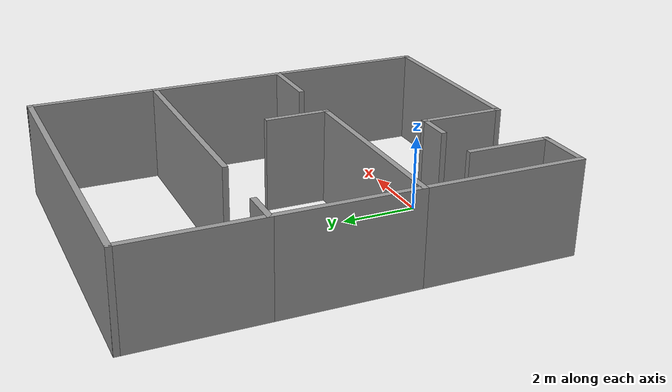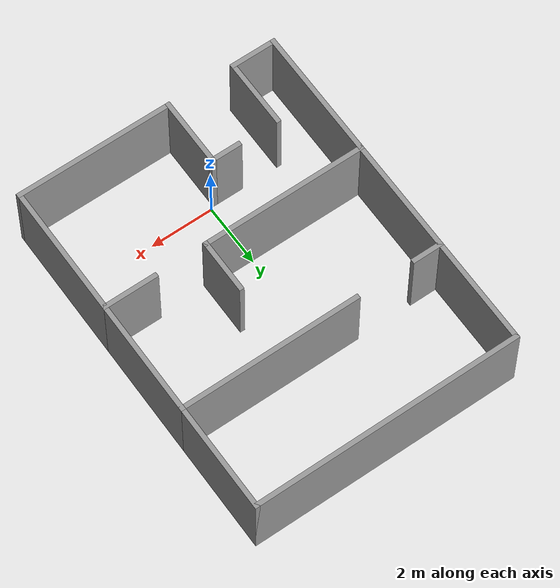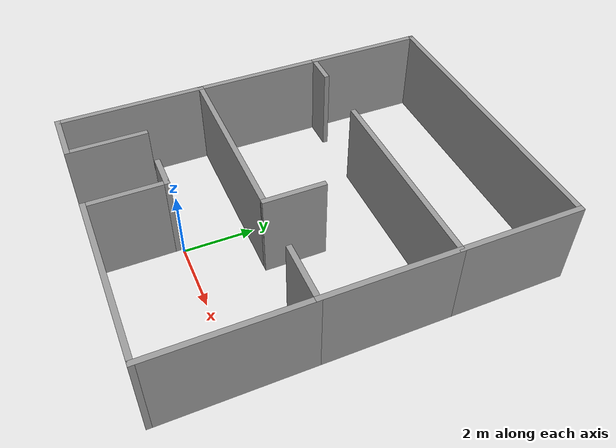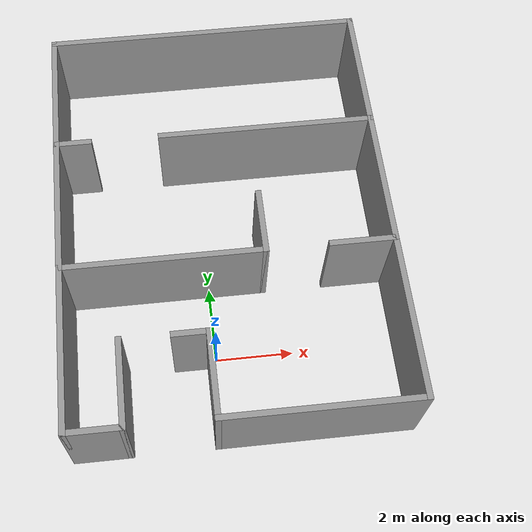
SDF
<sdf version="1.7">
 <world name="__default__">
  <gravity>0 0 -9.8</gravity>
  <magnetic_field>6e-06 2.3e-05 -4.2e-05</magnetic_field>
  <atmosphere type="adiabatic"/>
  <physics type="ode">
   <max_step_size>0.001</max_step_size>
   <real_time_factor>1</real_time_factor>
   <real_time_update_rate>1000</real_time_update_rate>
  </physics>
  <scene><ambient>0.4 0.4 0.4 1</ambient><background>0.7 0.7 0.7 1</background><shadows>1</shadows></scene>
  <spherical_coordinates>
   <surface_model>EARTH_WGS84</surface_model>
   <latitude_deg>0</latitude_deg>
   <longitude_deg>0</longitude_deg>
   <elevation>0</elevation>
   <heading_deg>0</heading_deg>
  </spherical_coordinates>
  <model name="follow_person">
   <pose>0.511964 3.29768 0 0 -0 0</pose>
   <link name="Wall_0">
    <collision name="Wall_0_Collision">
     <geometry><box><size>8.5 0.15 2.5</size></box></geometry>
     <pose>0 0 1.25 0 -0 0</pose>
    </collision>
    <visual name="Wall_0_Visual">
     <pose>0 0 1.25 0 -0 0</pose>
     <geometry><box><size>8.5 0.15 2.5</size></box></geometry>
     <material>
      <script><uri>file://media/materials/scripts/gazebo.material</uri><name>Gazebo/Grey</name></script>
      <ambient>1 1 1 1</ambient>
     </material>
     <meta><layer>0</layer></meta>
    </visual>
    <pose>-0 5.525 0 0 -0 0</pose>
   </link>
   <link name="Wall_1">
    <collision name="Wall_1_Collision">
     <geometry><box><size>3.5 0.15 2.5</size></box></geometry>
     <pose>0 0 1.25 0 -0 0</pose>
    </collision>
    <visual name="Wall_1_Visual">
     <pose>0 0 1.25 0 -0 0</pose>
     <geometry><box><size>3.5 0.15 2.5</size></box></geometry>
     <material>
      <script><uri>file://media/materials/scripts/gazebo.material</uri><name>Gazebo/Grey</name></script>
      <ambient>1 1 1 1</ambient>
     </material>
     <meta><layer>0</layer></meta>
    </visual>
    <pose>4.175 3.85 0 0 -0 -1.5708</pose>
   </link>
   <link name="Wall_10">
    <collision name="Wall_10_Collision">
     <geometry><box><size>1.75 0.15 2.5</size></box></geometry>
     <pose>0 0 1.25 0 -0 0</pose>
    </collision>
    <visual name="Wall_10_Visual">
     <pose>0 0 1.25 0 -0 0</pose>
     <geometry><box><size>1.75 0.15 2.5</size></box></geometry>
     <material>
      <script><uri>file://media/materials/scripts/gazebo.material</uri><name>Gazebo/Grey</name></script>
      <ambient>1 1 1 1</ambient>
     </material>
     <meta><layer>0</layer></meta>
    </visual>
    <pose>0.925 -0.625 0 0 -0 1.5708</pose>
   </link>
   <link name="Wall_12">
    <collision name="Wall_12_Collision">
     <geometry><box><size>3.75 0.15 2.5</size></box></geometry>
     <pose>0 0 1.25 0 -0 0</pose>
    </collision>
    <visual name="Wall_12_Visual">
     <pose>0 0 1.25 0 -0 0</pose>
     <geometry><box><size>3.75 0.15 2.5</size></box></geometry>
     <material>
      <script><uri>file://media/materials/scripts/gazebo.material</uri><name>Gazebo/Grey</name></script>
      <ambient>1 1 1 1</ambient>
     </material>
     <meta><layer>0</layer></meta>
    </visual>
    <pose>4.175 0.375 0 0 -0 -1.5708</pose>
   </link>
   <link name="Wall_13">
    <collision name="Wall_13_Collision">
     <geometry><box><size>1.75 0.15 2.5</size></box></geometry>
     <pose>0 0 1.25 0 -0 0</pose>
    </collision>
    <visual name="Wall_13_Visual">
     <pose>0 0 1.25 0 -0 0</pose>
     <geometry><box><size>1.75 0.15 2.5</size></box></geometry>
     <material>
      <script><uri>file://media/materials/scripts/gazebo.material</uri><name>Gazebo/Grey</name></script>
      <ambient>1 1 1 1</ambient>
     </material>
     <meta><layer>0</layer></meta>
    </visual>
    <pose>3.375 -1.425 0 0 -0 3.14159</pose>
   </link>
   <link name="Wall_15">
    <collision name="Wall_15_Collision">
     <geometry><box><size>4.25 0.15 2.5</size></box></geometry>
     <pose>0 0 1.25 0 -0 0</pose>
    </collision>
    <visual name="Wall_15_Visual">
     <pose>0 0 1.25 0 -0 0</pose>
     <geometry><box><size>4.25 0.15 2.5</size></box></geometry>
     <material>
      <script><uri>file://media/materials/scripts/gazebo.material</uri><name>Gazebo/Grey</name></script>
      <ambient>1 1 1 1</ambient>
     </material>
     <meta><layer>0</layer></meta>
    </visual>
    <pose>-4.175 -3.475 0 0 -0 -1.5708</pose>
   </link>
   <link name="Wall_16">
    <collision name="Wall_16_Collision">
     <geometry><box><size>1.5 0.15 2.5</size></box></geometry>
     <pose>0 0 1.25 0 -0 0</pose>
    </collision>
    <visual name="Wall_16_Visual">
     <pose>0 0 1.25 0 -0 0</pose>
     <geometry><box><size>1.5 0.15 2.5</size></box></geometry>
     <material>
      <script><uri>file://media/materials/scripts/gazebo.material</uri><name>Gazebo/Grey</name></script>
      <ambient>1 1 1 1</ambient>
     </material>
     <meta><layer>0</layer></meta>
    </visual>
    <pose>-3.5 -5.525 0 0 -0 0</pose>
   </link>
   <link name="Wall_17">
    <collision name="Wall_17_Collision">
     <geometry><box><size>2.25 0.15 2.5</size></box></geometry>
     <pose>0 0 1.25 0 -0 0</pose>
    </collision>
    <visual name="Wall_17_Visual">
     <pose>0 0 1.25 0 -0 0</pose>
     <geometry><box><size>2.25 0.15 2.5</size></box></geometry>
     <material>
      <script><uri>file://media/materials/scripts/gazebo.material</uri><name>Gazebo/Grey</name></script>
      <ambient>1 1 1 1</ambient>
     </material>
     <meta><layer>0</layer></meta>
    </visual>
    <pose>-2.825 -4.475 0 0 -0 1.5708</pose>
   </link>
   <link name="Wall_19">
    <collision name="Wall_19_Collision">
     <geometry><box><size>4.25 0.15 2.5</size></box></geometry>
     <pose>0 0 1.25 0 -0 0</pose>
    </collision>
    <visual name="Wall_19_Visual">
     <pose>0 0 1.25 0 -0 0</pose>
     <geometry><box><size>4.25 0.15 2.5</size></box></geometry>
     <material>
      <script><uri>file://media/materials/scripts/gazebo.material</uri><name>Gazebo/Grey</name></script>
      <ambient>1 1 1 1</ambient>
     </material>
     <meta><layer>0</layer></meta>
    </visual>
    <pose>4.175 -3.475 0 0 -0 -1.5708</pose>
   </link>
   <link name="Wall_2">
    <collision name="Wall_2_Collision">
     <geometry><box><size>5.75 0.15 2.5</size></box></geometry>
     <pose>0 0 1.25 0 -0 0</pose>
    </collision>
    <visual name="Wall_2_Visual">
     <pose>0 0 1.25 0 -0 0</pose>
     <geometry><box><size>5.75 0.15 2.5</size></box></geometry>
     <material>
      <script><uri>file://media/materials/scripts/gazebo.material</uri><name>Gazebo/Grey</name></script>
      <ambient>1 1 1 1</ambient>
     </material>
     <meta><layer>0</layer></meta>
    </visual>
    <pose>1.375 2.175 0 0 -0 3.14159</pose>
   </link>
   <link name="Wall_20">
    <collision name="Wall_20_Collision">
     <geometry><box><size>5 0.15 2.5</size></box></geometry>
     <pose>0 0 1.25 0 -0 0</pose>
    </collision>
    <visual name="Wall_20_Visual">
     <pose>0 0 1.25 0 -0 0</pose>
     <geometry><box><size>5 0.15 2.5</size></box></geometry>
     <material>
      <script><uri>file://media/materials/scripts/gazebo.material</uri><name>Gazebo/Grey</name></script>
      <ambient>1 1 1 1</ambient>
     </material>
     <meta><layer>0</layer></meta>
    </visual>
    <pose>1.75 -5.525 0 0 -0 3.14159</pose>
   </link>
   <link name="Wall_21">
    <collision name="Wall_21_Collision">
     <geometry><box><size>2.25 0.15 2.5</size></box></geometry>
     <pose>0 0 1.25 0 -0 0</pose>
    </collision>
    <visual name="Wall_21_Visual">
     <pose>0 0 1.25 0 -0 0</pose>
     <geometry><box><size>2.25 0.15 2.5</size></box></geometry>
     <material>
      <script><uri>file://media/materials/scripts/gazebo.material</uri><name>Gazebo/Grey</name></script>
      <ambient>1 1 1 1</ambient>
     </material>
     <meta><layer>0</layer></meta>
    </visual>
    <pose>-0.675 -4.475 0 0 -0 1.5708</pose>
   </link>
   <link name="Wall_22">
    <collision name="Wall_22_Collision">
     <geometry><box><size>1 0.15 2.5</size></box></geometry>
     <pose>0 0 1.25 0 -0 0</pose>
    </collision>
    <visual name="Wall_22_Visual">
     <pose>0 0 1.25 0 -0 0</pose>
     <geometry><box><size>1 0.15 2.5</size></box></geometry>
     <material>
      <script><uri>file://media/materials/scripts/gazebo.material</uri><name>Gazebo/Grey</name></script>
      <ambient>1 1 1 1</ambient>
     </material>
     <meta><layer>0</layer></meta>
    </visual>
    <pose>-1.1 -3.425 0 0 -0 3.14159</pose>
   </link>
   <link name="Wall_4">
    <collision name="Wall_4_Collision">
     <geometry><box><size>3.5 0.15 2.5</size></box></geometry>
     <pose>0 0 1.25 0 -0 0</pose>
    </collision>
    <visual name="Wall_4_Visual">
     <pose>0 0 1.25 0 -0 0</pose>
     <geometry><box><size>3.5 0.15 2.5</size></box></geometry>
     <material>
      <script><uri>file://media/materials/scripts/gazebo.material</uri><name>Gazebo/Grey</name></script>
      <ambient>1 1 1 1</ambient>
     </material>
     <meta><layer>0</layer></meta>
    </visual>
    <pose>-4.175 3.85 0 0 -0 -1.5708</pose>
   </link>
   <link name="Wall_5">
    <collision name="Wall_5_Collision">
     <geometry><box><size>1 0.15 2.5</size></box></geometry>
     <pose>0 0 1.25 0 -0 0</pose>
    </collision>
    <visual name="Wall_5_Visual">
     <pose>0 0 1.25 0 -0 0</pose>
     <geometry><box><size>1 0.15 2.5</size></box></geometry>
     <material>
      <script><uri>file://media/materials/scripts/gazebo.material</uri><name>Gazebo/Grey</name></script>
      <ambient>1 1 1 1</ambient>
     </material>
     <meta><layer>0</layer></meta>
    </visual>
    <pose>-3.75 2.175 0 0 -0 0</pose>
   </link>
   <link name="Wall_8">
    <collision name="Wall_8_Collision">
     <geometry><box><size>3.75 0.15 2.5</size></box></geometry>
     <pose>0 0 1.25 0 -0 0</pose>
    </collision>
    <visual name="Wall_8_Visual">
     <pose>0 0 1.25 0 -0 0</pose>
     <geometry><box><size>3.75 0.15 2.5</size></box></geometry>
     <material>
      <script><uri>file://media/materials/scripts/gazebo.material</uri><name>Gazebo/Grey</name></script>
      <ambient>1 1 1 1</ambient>
     </material>
     <meta><layer>0</layer></meta>
    </visual>
    <pose>-4.175 0.375 0 0 -0 -1.5708</pose>
   </link>
   <link name="Wall_9">
    <collision name="Wall_9_Collision">
     <geometry><box><size>5.25 0.15 2.5</size></box></geometry>
     <pose>0 0 1.25 0 -0 0</pose>
    </collision>
    <visual name="Wall_9_Visual">
     <pose>0 0 1.25 0 -0 0</pose>
     <geometry><box><size>5.25 0.15 2.5</size></box></geometry>
     <material>
      <script><uri>file://media/materials/scripts/gazebo.material</uri><name>Gazebo/Grey</name></script>
      <ambient>1 1 1 1</ambient>
     </material>
     <meta><layer>0</layer></meta>
    </visual>
    <pose>-1.625 -1.425 0 0 -0 0</pose>
   </link>
   <static>1</static>
  </model>
 </world>
</sdf>
